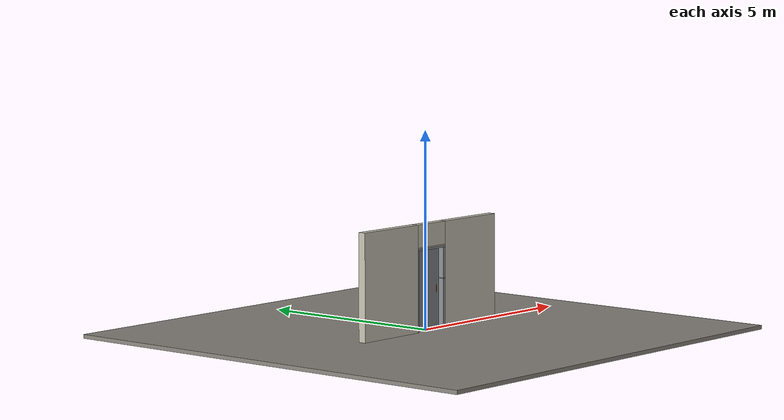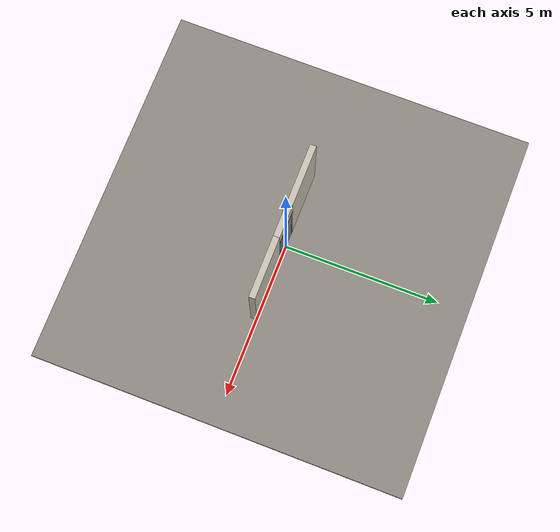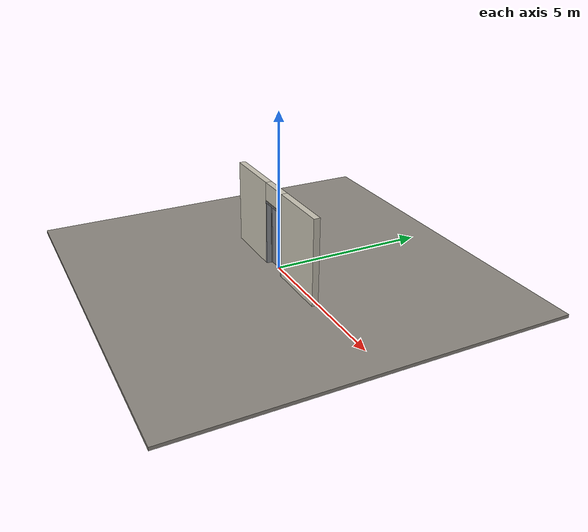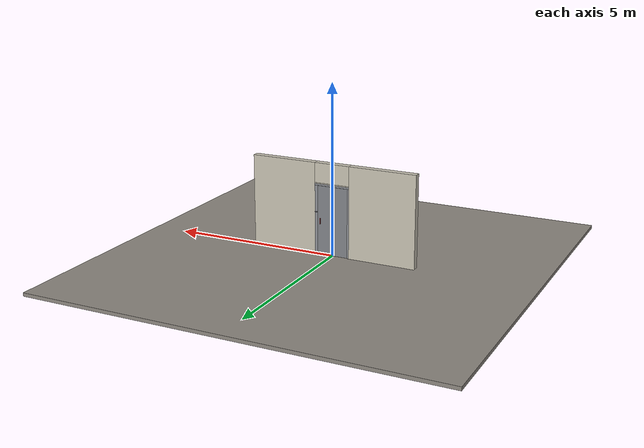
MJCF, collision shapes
<?xml version="1.0" ?>
<mujoco model="db0367_swing_single_minimal">
  <compiler angle="radian" meshdir="../../hardware" texturedir="../../textures" autolimits="true" inertiafromgeom="false"/>
  <option timestep="0.002" integrator="implicitfast" cone="elliptic" impratio="10" noslip_iterations="3">
    <flag multiccd="enable"/>
  </option>
  <size memory="16M"/>
  <default>
    <geom condim="4" solref="0.005 1" solimp="0.95 0.99 0.001"/>
    <joint solreflimit="0.005 1" solimplimit="0.95 0.99 0.001"/>
    <tendon solreflimit="0.005 1"/>
    <equality solref="0.002 1"/>
  </default>
  <visual>
    <headlight ambient="0.4 0.4 0.4" diffuse="0.7 0.7 0.7" specular="0.2 0.2 0.2"/>
    <quality shadowsize="4096"/>
    <map znear="0.01" zfar="60"/>
  </visual>
  <asset>
    <mesh name="pull_1e5d69a91a" file="pull_1e5d69a91a.obj"/>
    <material name="mat_floor" rgba="0.55 0.53 0.5 1" specular="0.2" shininess="0.15" reflectance="0"/>
    <material name="mat_wall" rgba="0.78 0.76 0.7 1" specular="0.2" shininess="0.1" reflectance="0"/>
    <material name="mat_leaf" rgba="0.5 0.51 0.53 1" specular="0.23" shininess="0.48" reflectance="0.02"/>
    <material name="mat_hinge" rgba="0.65 0.66 0.68 1" specular="0.74" shininess="0.5" reflectance="0.36"/>
    <material name="mat_op_stainless" rgba="0.75 0.76 0.77 1" specular="0.8" shininess="0.65" reflectance="0.4"/>
    <material name="mat_op_brass" rgba="0.85 0.66 0.3 1" specular="0.8" shininess="0.75" reflectance="0.4"/>
    <material name="mat_frame" rgba="0.55 0.56 0.58 1" specular="0.8" shininess="0.55" reflectance="0.4"/>
    <material name="mat_bumper_stop" rgba="0.08 0.08 0.08 1" specular="0.2" shininess="0.1" reflectance="0"/>
    <material name="mat_stop_base" rgba="0.9 0.9 0.92 1" specular="0.8" shininess="0.9" reflectance="0.4"/>
    <texture name="skybox" type="skybox" builtin="gradient" rgb1="0.6 0.7 0.85" rgb2="0.9 0.92 0.95" width="256" height="256"/>
  </asset>
  <worldbody>
    <light name="sun" pos="1.5 -2.5 4" dir="-0.3 0.5 -0.8" directional="true" diffuse="0.8 0.8 0.8" specular="0.3 0.3 0.3" castshadow="true"/>
    <light name="fill" pos="-1.5 2.5 3" dir="0.3 -0.5 -0.7" directional="true" diffuse="0.35 0.35 0.4" castshadow="false"/>
    <camera name="robot_view" pos="0 -2.632187 1.734312" xyaxes="1 0 0 0 0.26963 0.962964" fovy="52"/>
    <camera name="far_view" pos="0 2.452187 1.734312" xyaxes="-1 0 0 0 -0.26963 0.962964" fovy="52"/>
    <camera name="iso" pos="1.932062 -2.225437 2.141063" xyaxes="0.741536 0.670913 0 -0.242917 0.268487 0.932151" fovy="46"/>
    <camera name="detail_handle" pos="0.532 -0.863 1.296" xyaxes="0.97561 0.219512 0 -0.070934 0.315262 0.94635" fovy="38"/>
    <geom name="floor" type="box" size="6 6 0.05" pos="0 0 -0.05" material="mat_floor" group="0" contype="1" conaffinity="1" friction="0.8 0.005 0.0001" density="2400"/>
    <geom name="wall_left" type="box" size="0.995 0.1 1.35" pos="-1.505 -0.09 1.35" material="mat_wall" group="0" contype="1" conaffinity="1" friction="0.6 0.005 0.0001" density="800"/>
    <geom name="wall_right" type="box" size="0.98 0.1 1.35" pos="1.52 -0.09 1.35" material="mat_wall" group="0" contype="1" conaffinity="1" friction="0.6 0.005 0.0001" density="800"/>
    <geom name="wall_header" type="box" size="0.525 0.1 0.2875" pos="0.015 -0.09 2.4125" material="mat_wall" group="0" contype="1" conaffinity="1" friction="0.6 0.005 0.0001" density="800"/>
    <geom name="jamb_hinge" type="box" size="0.025 0.1 1.0225" pos="-0.485 -0.09 1.0225" material="mat_frame" group="0" contype="1" conaffinity="1" friction="0.6 0.005 0.0001" density="300"/>
    <geom name="strike_1266_wall_n" type="box" size="0.04 0.0985 0.01" pos="0.5 -0.0915 1.266" material="mat_frame" group="0" contype="1" conaffinity="1" friction="0.6 0.005 0.0001" density="300"/>
    <geom name="strike_1266_wall_p" type="box" size="0.022 0.003 0.01" pos="0.482 0.026 1.266" material="mat_frame" group="0" contype="1" conaffinity="1" friction="0.6 0.005 0.0001" density="300"/>
    <geom name="strike_1266_back" type="box" size="0.019 0.008 0.01" pos="0.521 0.015 1.266" material="mat_frame" group="0" contype="1" conaffinity="1" friction="0.6 0.005 0.0001" density="300"/>
    <geom name="jamb_strike_0" type="box" size="0.04 0.1 0.628" pos="0.5 -0.09 0.628" material="mat_frame" group="0" contype="1" conaffinity="1" friction="0.6 0.005 0.0001" density="300"/>
    <geom name="jamb_strike_1" type="box" size="0.04 0.1 0.3845" pos="0.5 -0.09 1.6605" material="mat_frame" group="0" contype="1" conaffinity="1" friction="0.6 0.005 0.0001" density="300"/>
    <geom name="jamb_head" type="box" size="0.525 0.1 0.025" pos="0.015 -0.09 2.07" material="mat_frame" group="0" contype="1" conaffinity="1" friction="0.6 0.005 0.0001" density="300"/>
    <geom name="head_stud" type="box" size="0.525 0.1 0.015" pos="0.015 -0.09 2.11" material="mat_wall" group="0" contype="1" conaffinity="1" friction="0.6 0.005 0.0001" density="500"/>
    <geom name="stop_hinge" type="box" size="0.0055 0.016 1.0225" pos="-0.4545 -0.0195 1.0225" material="mat_frame" group="0" contype="1" conaffinity="1" friction="0.6 0.005 0.0001" density="300"/>
    <geom name="stop_strike" type="box" size="0.0055 0.016 1.0225" pos="0.4545 -0.0195 1.0225" material="mat_frame" group="0" contype="1" conaffinity="1" friction="0.6 0.005 0.0001" density="300"/>
    <geom name="stop_head" type="box" size="0.46 0.016 0.0055" pos="0 -0.0195 2.0395" material="mat_frame" group="0" contype="1" conaffinity="1" friction="0.6 0.005 0.0001" density="300"/>
    <site name="approach_point" pos="0 -1.5 0" quat="1 0 0 0" size="0.05" rgba="0.2 0.9 0.2 0.5" group="4"/>
    <site name="goal_point" pos="0 1.5 0" quat="1 0 0 0" size="0.05" rgba="0.2 0.9 0.2 0.5" group="4"/>
    <site name="door_plane_center" pos="0 0 1.0225" quat="1 0 0 0" size="0.02" rgba="0.2 0.9 0.2 0.5" group="4"/>
    <body name="leaf" pos="-0.46 0 0">
      <inertial pos="0.463582 0 1.024908" mass="88.994597" quat="-0.499971 0.499971 0.500029 0.500029" diaginertia="6.246723191 30.316181301 36.556502555"/>
      <joint name="leaf_hinge" type="hinge" axis="0 0 1" pos="0.003 0.01 0" limited="true" range="0 1.570796" damping="0.30611" frictionloss="1.101299" armature="0.02"/>
      <geom name="leaf_slab" type="box" size="0.457 0.003 1.016" pos="0.46 0 1.025" material="mat_leaf" group="0" contype="1" conaffinity="1" friction="0.45 0.005 0.0001" density="1"/>
      <geom name="leaf_pull_n" type="mesh" mesh="pull_1e5d69a91a" pos="0.812 -0.003 1.016" quat="0.707107 0.707107 0 0" material="mat_op_stainless" group="1" contype="0" conaffinity="0" density="3000"/>
      <geom name="leaf_pull_col_n" type="capsule" size="0.0095 0.08" pos="0.812 -0.063 1.016" material="mat_op_stainless" group="3" contype="1" conaffinity="1" rgba="0.8 0.3 0.3 0.25" friction="0.7 0.01 0.0001" density="3000"/>
      <geom name="leaf_pull_p" type="mesh" mesh="pull_1e5d69a91a" pos="0.812 0.003 1.016" quat="-0.707107 0.707107 0 0" material="mat_op_stainless" group="1" contype="0" conaffinity="0" density="3000"/>
      <geom name="leaf_pull_col_p" type="capsule" size="0.0095 0.08" pos="0.812 0.063 1.016" material="mat_op_stainless" group="3" contype="1" conaffinity="1" rgba="0.8 0.3 0.3 0.25" friction="0.7 0.01 0.0001" density="3000"/>
      <site name="leaf_pull_grip_n" pos="0.812 -0.063 1.016" quat="1 0 0 0" size="0.012" rgba="0.2 0.9 0.2 0.5" group="4"/>
      <site name="leaf_pull_grip_p" pos="0.812 0.063 1.016" quat="1 0 0 0" size="0.012" rgba="0.2 0.9 0.2 0.5" group="4"/>
      <site name="leaf_edge_mid" pos="0.917 0 1.016" quat="1 0 0 0" size="0.02" rgba="0.2 0.9 0.2 0.5" group="4"/>
    </body>
  </worldbody>
  <sensor>
    <jointpos name="leaf_hinge_pos" joint="leaf_hinge"/>
    <jointvel name="leaf_hinge_vel" joint="leaf_hinge"/>
  </sensor>
</mujoco>
